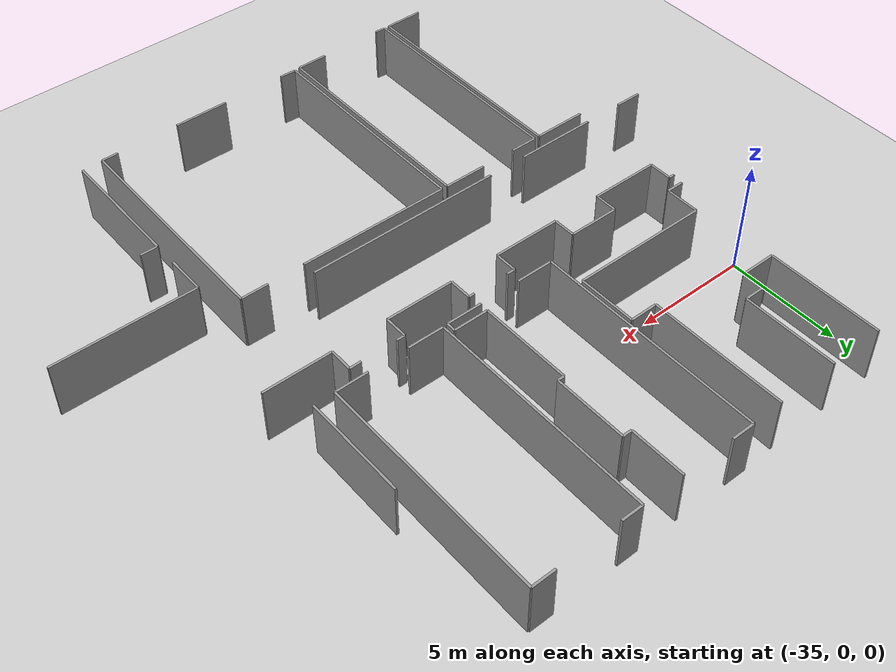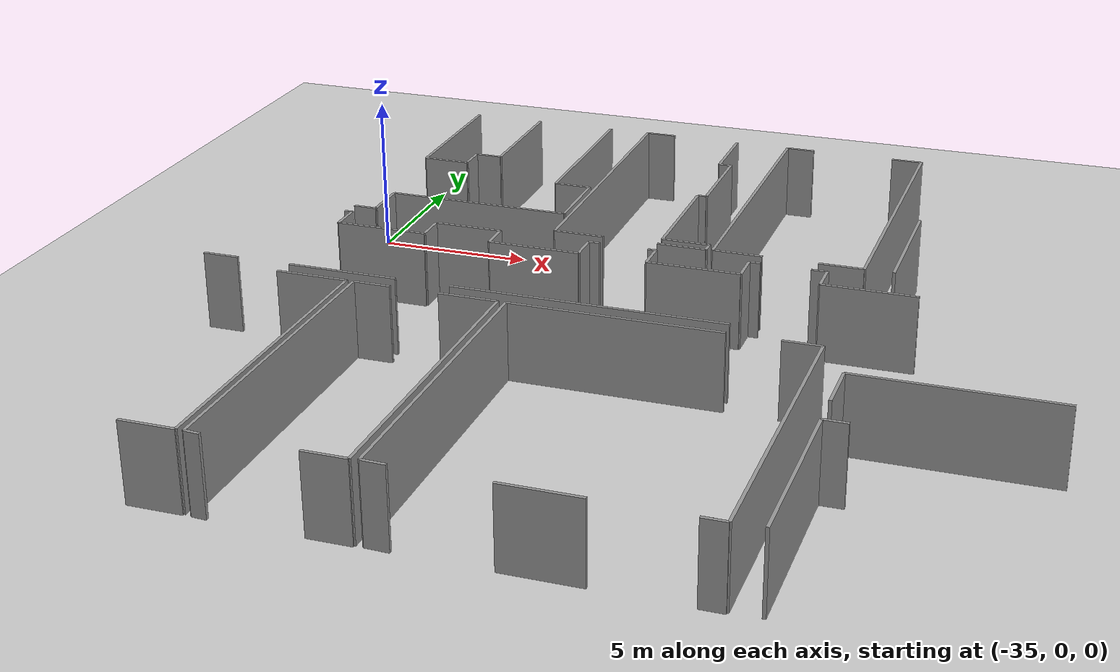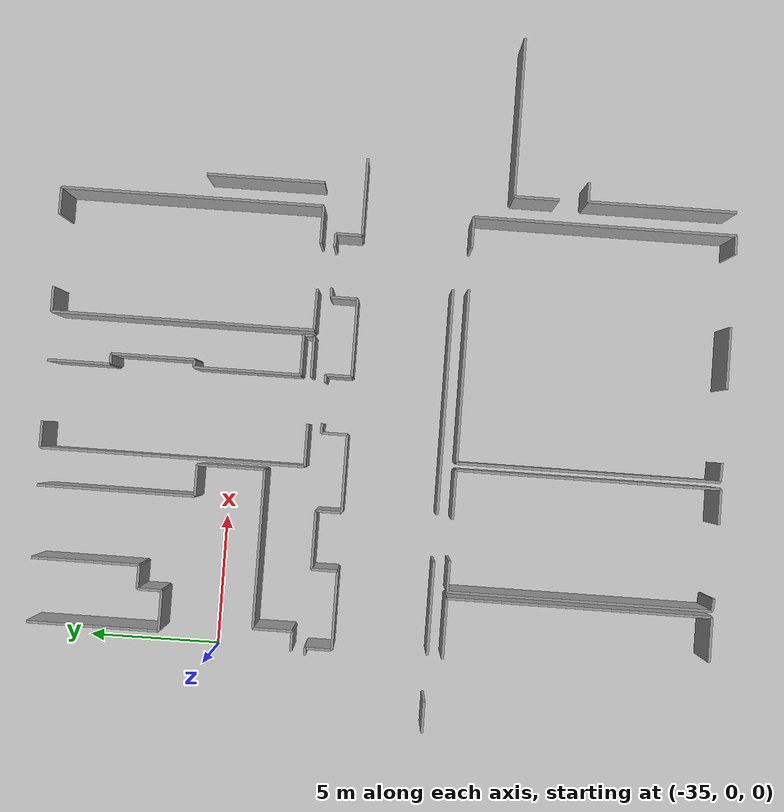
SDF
<sdf version="1.6">
 <world name="default">
  <model name="ground_plane">
   <static>1</static>
   <link name="link">
    <collision name="collision">
     <geometry><plane><normal>0 0 1</normal><size>100 100</size></plane></geometry>
     <surface><friction><ode><mu>100</mu><mu2>50</mu2></ode></friction></surface>
    </collision>
    <visual name="visual">
     <cast_shadows>0</cast_shadows>
     <geometry><plane><normal>0 0 1</normal><size>100 100</size></plane></geometry>
     <material>
      <script><uri>file://media/materials/scripts/gazebo.material</uri><name>Gazebo/Grey</name></script>
     </material>
    </visual>
   </link>
  </model>
  <model name="50055641">
   <static>1</static>
   <link name="Wall_41">
    <collision name="Wall_41_Collision">
     <geometry><box><size>0.258731226752 0.1 2.5</size></box></geometry>
     <pose>0.129365613376 0 1.25 0 0 0</pose>
    </collision>
    <visual name="Wall_41_Visual">
     <pose>0.129365613376 0 1.25 0 0 0</pose>
     <geometry><box><size>0.258731226752 0.1 2.5</size></box></geometry>
     <material>
      <script><uri>file://media/materials/scripts/gazebo.material</uri><name>Gazebo/Grey</name></script>
      <ambient>1 1 1 1</ambient>
     </material>
    </visual>
    <pose>34.4054132971 -22.2502507332 0 0 0 0.0</pose>
   </link>
   <link name="Wall_42">
    <collision name="Wall_42_Collision">
     <geometry><box><size>1.00483692823 0.1 2.5</size></box></geometry>
     <pose>0.502418464117 0 1.25 0 0 0</pose>
    </collision>
    <visual name="Wall_42_Visual">
     <pose>0.502418464117 0 1.25 0 0 0</pose>
     <geometry><box><size>1.00483692823 0.1 2.5</size></box></geometry>
     <material>
      <script><uri>file://media/materials/scripts/gazebo.material</uri><name>Gazebo/Grey</name></script>
      <ambient>1 1 1 1</ambient>
     </material>
    </visual>
    <pose>34.6641445239 -22.2502507332 0 0 0 -1.57079632679</pose>
   </link>
   <link name="Wall_43">
    <collision name="Wall_43_Collision">
     <geometry><box><size>2.96664931636 0.1 2.5</size></box></geometry>
     <pose>1.48332465818 0 1.25 0 0 0</pose>
    </collision>
    <visual name="Wall_43_Visual">
     <pose>1.48332465818 0 1.25 0 0 0</pose>
     <geometry><box><size>2.96664931636 0.1 2.5</size></box></geometry>
     <material>
      <script><uri>file://media/materials/scripts/gazebo.material</uri><name>Gazebo/Grey</name></script>
      <ambient>1 1 1 1</ambient>
     </material>
    </visual>
    <pose>34.6641445239 -23.2550876614 0 0 0 0.0</pose>
   </link>
   <link name="Wall_44">
    <collision name="Wall_44_Collision">
     <geometry><box><size>0.978303647374 0.1 2.5</size></box></geometry>
     <pose>0.489151823687 0 1.25 0 0 0</pose>
    </collision>
    <visual name="Wall_44_Visual">
     <pose>0.489151823687 0 1.25 0 0 0</pose>
     <geometry><box><size>0.978303647374 0.1 2.5</size></box></geometry>
     <material>
      <script><uri>file://media/materials/scripts/gazebo.material</uri><name>Gazebo/Grey</name></script>
      <ambient>1 1 1 1</ambient>
     </material>
    </visual>
    <pose>37.6307938402 -23.2550876614 0 0 0 1.57079632679</pose>
   </link>
   <link name="Wall_45">
    <collision name="Wall_45_Collision">
     <geometry><box><size>2.2027701253 0.1 2.5</size></box></geometry>
     <pose>1.10138506265 0 1.25 0 0 0</pose>
    </collision>
    <visual name="Wall_45_Visual">
     <pose>1.10138506265 0 1.25 0 0 0</pose>
     <geometry><box><size>2.2027701253 0.1 2.5</size></box></geometry>
     <material>
      <script><uri>file://media/materials/scripts/gazebo.material</uri><name>Gazebo/Grey</name></script>
      <ambient>1 1 1 1</ambient>
     </material>
    </visual>
    <pose>37.6307938402 -22.276784014 0 0 0 0.0</pose>
   </link>
   <link name="Wall_46">
    <collision name="Wall_46_Collision">
     <geometry><box><size>0.971955972527 0.1 2.5</size></box></geometry>
     <pose>0.485977986264 0 1.25 0 0 0</pose>
    </collision>
    <visual name="Wall_46_Visual">
     <pose>0.485977986264 0 1.25 0 0 0</pose>
     <geometry><box><size>0.971955972527 0.1 2.5</size></box></geometry>
     <material>
      <script><uri>file://media/materials/scripts/gazebo.material</uri><name>Gazebo/Grey</name></script>
      <ambient>1 1 1 1</ambient>
     </material>
    </visual>
    <pose>39.8335639655 -22.276784014 0 0 0 -1.57079632679</pose>
   </link>
   <link name="Wall_47">
    <collision name="Wall_47_Collision">
     <geometry><box><size>2.94760629182 0.1 2.5</size></box></geometry>
     <pose>1.47380314591 0 1.25 0 0 0</pose>
    </collision>
    <visual name="Wall_47_Visual">
     <pose>1.47380314591 0 1.25 0 0 0</pose>
     <geometry><box><size>2.94760629182 0.1 2.5</size></box></geometry>
     <material>
      <script><uri>file://media/materials/scripts/gazebo.material</uri><name>Gazebo/Grey</name></script>
      <ambient>1 1 1 1</ambient>
     </material>
    </visual>
    <pose>39.8335639655 -23.2487399865 0 0 0 0.0</pose>
   </link>
   <link name="Wall_48">
    <collision name="Wall_48_Collision">
     <geometry><box><size>0.984651322221 0.1 2.5</size></box></geometry>
     <pose>0.49232566111 0 1.25 0 0 0</pose>
    </collision>
    <visual name="Wall_48_Visual">
     <pose>0.49232566111 0 1.25 0 0 0</pose>
     <geometry><box><size>0.984651322221 0.1 2.5</size></box></geometry>
     <material>
      <script><uri>file://media/materials/scripts/gazebo.material</uri><name>Gazebo/Grey</name></script>
      <ambient>1 1 1 1</ambient>
     </material>
    </visual>
    <pose>42.7811702573 -23.2487399865 0 0 0 1.57079632679</pose>
   </link>
   <link name="Wall_49">
    <collision name="Wall_49_Collision">
     <geometry><box><size>0.359786210311 0.1 2.5</size></box></geometry>
     <pose>0.179893105156 0 1.25 0 0 0</pose>
    </collision>
    <visual name="Wall_49_Visual">
     <pose>0.179893105156 0 1.25 0 0 0</pose>
     <geometry><box><size>0.359786210311 0.1 2.5</size></box></geometry>
     <material>
      <script><uri>file://media/materials/scripts/gazebo.material</uri><name>Gazebo/Grey</name></script>
      <ambient>1 1 1 1</ambient>
     </material>
    </visual>
    <pose>42.7811702573 -22.2640886643 0 0 0 0.0</pose>
   </link>
   <link name="Wall_50">
    <collision name="Wall_50_Collision">
     <geometry><box><size>0.259239040739 0.1 2.5</size></box></geometry>
     <pose>0.12961952037 0 1.25 0 0 0</pose>
    </collision>
    <visual name="Wall_50_Visual">
     <pose>0.12961952037 0 1.25 0 0 0</pose>
     <geometry><box><size>0.259239040739 0.1 2.5</size></box></geometry>
     <material>
      <script><uri>file://media/materials/scripts/gazebo.material</uri><name>Gazebo/Grey</name></script>
      <ambient>1 1 1 1</ambient>
     </material>
    </visual>
    <pose>44.721654458 -22.2640886643 0 0 0 0.0</pose>
   </link>
   <link name="Wall_51">
    <collision name="Wall_51_Collision">
     <geometry><box><size>0.995569322957 0.1 2.5</size></box></geometry>
     <pose>0.497784661479 0 1.25 0 0 0</pose>
    </collision>
    <visual name="Wall_51_Visual">
     <pose>0.497784661479 0 1.25 0 0 0</pose>
     <geometry><box><size>0.995569322957 0.1 2.5</size></box></geometry>
     <material>
      <script><uri>file://media/materials/scripts/gazebo.material</uri><name>Gazebo/Grey</name></script>
      <ambient>1 1 1 1</ambient>
     </material>
    </visual>
    <pose>44.9808934987 -22.2640886643 0 0 0 -1.57079632679</pose>
   </link>
   <link name="Wall_52">
    <collision name="Wall_52_Collision">
     <geometry><box><size>2.96614150237 0.1 2.5</size></box></geometry>
     <pose>1.48307075118 0 1.25 0 0 0</pose>
    </collision>
    <visual name="Wall_52_Visual">
     <pose>1.48307075118 0 1.25 0 0 0</pose>
     <geometry><box><size>2.96614150237 0.1 2.5</size></box></geometry>
     <material>
      <script><uri>file://media/materials/scripts/gazebo.material</uri><name>Gazebo/Grey</name></script>
      <ambient>1 1 1 1</ambient>
     </material>
    </visual>
    <pose>44.9808934987 -23.2596579873 0 0 0 0.0</pose>
   </link>
   <link name="Wall_53">
    <collision name="Wall_53_Collision">
     <geometry><box><size>1.00801076566 0.1 2.5</size></box></geometry>
     <pose>0.504005382828 0 1.25 0 0 0</pose>
    </collision>
    <visual name="Wall_53_Visual">
     <pose>0.504005382828 0 1.25 0 0 0</pose>
     <geometry><box><size>1.00801076566 0.1 2.5</size></box></geometry>
     <material>
      <script><uri>file://media/materials/scripts/gazebo.material</uri><name>Gazebo/Grey</name></script>
      <ambient>1 1 1 1</ambient>
     </material>
    </visual>
    <pose>47.9470350011 -23.2596579873 0 0 0 1.57079632679</pose>
   </link>
   <link name="Wall_54">
    <collision name="Wall_54_Collision">
     <geometry><box><size>0.355215884422 0.1 2.5</size></box></geometry>
     <pose>0.177607942211 0 1.25 0 0 0</pose>
    </collision>
    <visual name="Wall_54_Visual">
     <pose>0.177607942211 0 1.25 0 0 0</pose>
     <geometry><box><size>0.355215884422 0.1 2.5</size></box></geometry>
     <material>
      <script><uri>file://media/materials/scripts/gazebo.material</uri><name>Gazebo/Grey</name></script>
      <ambient>1 1 1 1</ambient>
     </material>
    </visual>
    <pose>47.9470350011 -22.2516472216 0 0 0 0.0</pose>
   </link>
   <link name="Wall_55">
    <collision name="Wall_55_Collision">
     <geometry><box><size>0.495118638043 0.1 2.5</size></box></geometry>
     <pose>0.247559319021 0 1.25 0 0 0</pose>
    </collision>
    <visual name="Wall_55_Visual">
     <pose>0.247559319021 0 1.25 0 0 0</pose>
     <geometry><box><size>0.495118638043 0.1 2.5</size></box></geometry>
     <material>
      <script><uri>file://media/materials/scripts/gazebo.material</uri><name>Gazebo/Grey</name></script>
      <ambient>1 1 1 1</ambient>
     </material>
    </visual>
    <pose>49.8800289454 -22.2516472216 0 0 0 0.0</pose>
   </link>
   <link name="Wall_56">
    <collision name="Wall_56_Collision">
     <geometry><box><size>1.01143851007 0.1 2.5</size></box></geometry>
     <pose>0.505719255037 0 1.25 0 0 0</pose>
    </collision>
    <visual name="Wall_56_Visual">
     <pose>0.505719255037 0 1.25 0 0 0</pose>
     <geometry><box><size>1.01143851007 0.1 2.5</size></box></geometry>
     <material>
      <script><uri>file://media/materials/scripts/gazebo.material</uri><name>Gazebo/Grey</name></script>
      <ambient>1 1 1 1</ambient>
     </material>
    </visual>
    <pose>50.3751475834 -22.2516472216 0 0 0 -1.57079632679</pose>
   </link>
   <link name="Wall_57">
    <collision name="Wall_57_Collision">
     <geometry><box><size>2.95763561807 0.1 2.5</size></box></geometry>
     <pose>1.47881780904 0 1.25 0 0 0</pose>
    </collision>
    <visual name="Wall_57_Visual">
     <pose>1.47881780904 0 1.25 0 0 0</pose>
     <geometry><box><size>2.95763561807 0.1 2.5</size></box></geometry>
     <material>
      <script><uri>file://media/materials/scripts/gazebo.material</uri><name>Gazebo/Grey</name></script>
      <ambient>1 1 1 1</ambient>
     </material>
    </visual>
    <pose>50.3751475834 -23.2630857317 0 0 0 0.0</pose>
   </link>
   <link name="Wall_59">
    <collision name="Wall_59_Collision">
     <geometry><box><size>8.56440985667 0.1 2.5</size></box></geometry>
     <pose>4.28220492833 0 1.25 0 0 0</pose>
    </collision>
    <visual name="Wall_59_Visual">
     <pose>4.28220492833 0 1.25 0 0 0</pose>
     <geometry><box><size>8.56440985667 0.1 2.5</size></box></geometry>
     <material>
      <script><uri>file://media/materials/scripts/gazebo.material</uri><name>Gazebo/Grey</name></script>
      <ambient>1 1 1 1</ambient>
     </material>
    </visual>
    <pose>48.5664411126 -26.8581548579 0 0 0 3.14159265359</pose>
   </link>
   <link name="Wall_60">
    <collision name="Wall_60_Collision">
     <geometry><box><size>3.51851616753 0.1 2.5</size></box></geometry>
     <pose>1.75925808376 0 1.25 0 0 0</pose>
    </collision>
    <visual name="Wall_60_Visual">
     <pose>1.75925808376 0 1.25 0 0 0</pose>
     <geometry><box><size>3.51851616753 0.1 2.5</size></box></geometry>
     <material>
      <script><uri>file://media/materials/scripts/gazebo.material</uri><name>Gazebo/Grey</name></script>
      <ambient>1 1 1 1</ambient>
     </material>
    </visual>
    <pose>38.2434714164 -26.8581548579 0 0 0 3.14159265359</pose>
   </link>
   <link name="Wall_61">
    <collision name="Wall_61_Collision">
     <geometry><box><size>1.1552768221 0.1 2.5</size></box></geometry>
     <pose>0.57763841105 0 1.25 0 0 0</pose>
    </collision>
    <visual name="Wall_61_Visual">
     <pose>0.57763841105 0 1.25 0 0 0</pose>
     <geometry><box><size>1.1552768221 0.1 2.5</size></box></geometry>
     <material>
      <script><uri>file://media/materials/scripts/gazebo.material</uri><name>Gazebo/Grey</name></script>
      <ambient>1 1 1 1</ambient>
     </material>
    </visual>
    <pose>32.9825185035 -26.8581548579 0 0 0 3.14159265359</pose>
   </link>
   <link name="Wall_99">
    <collision name="Wall_99_Collision">
     <geometry><box><size>5.00006347675 0.1 2.5</size></box></geometry>
     <pose>2.50003173837 0 1.25 0 0 0</pose>
    </collision>
    <visual name="Wall_99_Visual">
     <pose>2.50003173837 0 1.25 0 0 0</pose>
     <geometry><box><size>5.00006347675 0.1 2.5</size></box></geometry>
     <material>
      <script><uri>file://media/materials/scripts/gazebo.material</uri><name>Gazebo/Grey</name></script>
      <ambient>1 1 1 1</ambient>
     </material>
    </visual>
    <pose>34.9018014701 -11.6992725565 0 0 0 -1.57079632679</pose>
   </link>
   <link name="Wall_100">
    <collision name="Wall_100_Collision">
     <geometry><box><size>1.51925249781 0.1 2.5</size></box></geometry>
     <pose>0.759626248905 0 1.25 0 0 0</pose>
    </collision>
    <visual name="Wall_100_Visual">
     <pose>0.759626248905 0 1.25 0 0 0</pose>
     <geometry><box><size>1.51925249781 0.1 2.5</size></box></geometry>
     <material>
      <script><uri>file://media/materials/scripts/gazebo.material</uri><name>Gazebo/Grey</name></script>
      <ambient>1 1 1 1</ambient>
     </material>
    </visual>
    <pose>34.9018014701 -16.6993360332 0 0 0 0.0</pose>
   </link>
   <link name="Wall_101">
    <collision name="Wall_101_Collision">
     <geometry><box><size>0.926506620625 0.1 2.5</size></box></geometry>
     <pose>0.463253310312 0 1.25 0 0 0</pose>
    </collision>
    <visual name="Wall_101_Visual">
     <pose>0.463253310312 0 1.25 0 0 0</pose>
     <geometry><box><size>0.926506620625 0.1 2.5</size></box></geometry>
     <material>
      <script><uri>file://media/materials/scripts/gazebo.material</uri><name>Gazebo/Grey</name></script>
      <ambient>1 1 1 1</ambient>
     </material>
    </visual>
    <pose>36.4210539679 -16.6993360332 0 0 0 1.57079632679</pose>
   </link>
   <link name="Wall_102">
    <collision name="Wall_102_Collision">
     <geometry><box><size>0.893117850931 0.1 2.5</size></box></geometry>
     <pose>0.446558925466 0 1.25 0 0 0</pose>
    </collision>
    <visual name="Wall_102_Visual">
     <pose>0.446558925466 0 1.25 0 0 0</pose>
     <geometry><box><size>0.893117850931 0.1 2.5</size></box></geometry>
     <material>
      <script><uri>file://media/materials/scripts/gazebo.material</uri><name>Gazebo/Grey</name></script>
      <ambient>1 1 1 1</ambient>
     </material>
    </visual>
    <pose>36.4210539679 -15.7728294126 0 0 0 0.0</pose>
   </link>
   <link name="Wall_103">
    <collision name="Wall_103_Collision">
     <geometry><box><size>4.07355685612 0.1 2.5</size></box></geometry>
     <pose>2.03677842806 0 1.25 0 0 0</pose>
    </collision>
    <visual name="Wall_103_Visual">
     <pose>2.03677842806 0 1.25 0 0 0</pose>
     <geometry><box><size>4.07355685612 0.1 2.5</size></box></geometry>
     <material>
      <script><uri>file://media/materials/scripts/gazebo.material</uri><name>Gazebo/Grey</name></script>
      <ambient>1 1 1 1</ambient>
     </material>
    </visual>
    <pose>37.3141718189 -15.7728294126 0 0 0 1.57079632679</pose>
   </link>
   <link name="Wall_104">
    <collision name="Wall_104_Collision">
     <geometry><box><size>5.97062296081 0.1 2.5</size></box></geometry>
     <pose>2.9853114804 0 1.25 0 0 0</pose>
    </collision>
    <visual name="Wall_104_Visual">
     <pose>2.9853114804 0 1.25 0 0 0</pose>
     <geometry><box><size>5.97062296081 0.1 2.5</size></box></geometry>
     <material>
      <script><uri>file://media/materials/scripts/gazebo.material</uri><name>Gazebo/Grey</name></script>
      <ambient>1 1 1 1</ambient>
     </material>
    </visual>
    <pose>40.0521778872 -11.6992725565 0 0 0 -1.57079632679</pose>
   </link>
   <link name="Wall_105">
    <collision name="Wall_105_Collision">
     <geometry><box><size>1.1966636621 0.1 2.5</size></box></geometry>
     <pose>0.59833183105 0 1.25 0 0 0</pose>
    </collision>
    <visual name="Wall_105_Visual">
     <pose>0.59833183105 0 1.25 0 0 0</pose>
     <geometry><box><size>1.1966636621 0.1 2.5</size></box></geometry>
     <material>
      <script><uri>file://media/materials/scripts/gazebo.material</uri><name>Gazebo/Grey</name></script>
      <ambient>1 1 1 1</ambient>
     </material>
    </visual>
    <pose>40.0521778872 -17.6698955173 0 0 0 0.0</pose>
   </link>
   <link name="Wall_106">
    <collision name="Wall_106_Collision">
     <geometry><box><size>2.56179461463 0.1 2.5</size></box></geometry>
     <pose>1.28089730732 0 1.25 0 0 0</pose>
    </collision>
    <visual name="Wall_106_Visual">
     <pose>1.28089730732 0 1.25 0 0 0</pose>
     <geometry><box><size>2.56179461463 0.1 2.5</size></box></geometry>
     <material>
      <script><uri>file://media/materials/scripts/gazebo.material</uri><name>Gazebo/Grey</name></script>
      <ambient>1 1 1 1</ambient>
     </material>
    </visual>
    <pose>41.2488415493 -17.6698955173 0 0 0 -1.57079632679</pose>
   </link>
   <link name="Wall_107">
    <collision name="Wall_107_Collision">
     <geometry><box><size>5.99347459026 0.1 2.5</size></box></geometry>
     <pose>2.99673729513 0 1.25 0 0 0</pose>
    </collision>
    <visual name="Wall_107_Visual">
     <pose>2.99673729513 0 1.25 0 0 0</pose>
     <geometry><box><size>5.99347459026 0.1 2.5</size></box></geometry>
     <material>
      <script><uri>file://media/materials/scripts/gazebo.material</uri><name>Gazebo/Grey</name></script>
      <ambient>1 1 1 1</ambient>
     </material>
    </visual>
    <pose>41.2488415493 -20.2316901319 0 0 0 3.14159265359</pose>
   </link>
   <link name="Wall_108">
    <collision name="Wall_108_Collision">
     <geometry><box><size>1.48878365855 0.1 2.5</size></box></geometry>
     <pose>0.744391829273 0 1.25 0 0 0</pose>
    </collision>
    <visual name="Wall_108_Visual">
     <pose>0.744391829273 0 1.25 0 0 0</pose>
     <geometry><box><size>1.48878365855 0.1 2.5</size></box></geometry>
     <material>
      <script><uri>file://media/materials/scripts/gazebo.material</uri><name>Gazebo/Grey</name></script>
      <ambient>1 1 1 1</ambient>
     </material>
    </visual>
    <pose>35.2553669591 -20.2316901319 0 0 0 -1.57079632679</pose>
   </link>
   <link name="Wall_109">
    <collision name="Wall_109_Collision">
     <geometry><box><size>0.751945562341 0.1 2.5</size></box></geometry>
     <pose>0.37597278117 0 1.25 0 0 0</pose>
    </collision>
    <visual name="Wall_109_Visual">
     <pose>0.37597278117 0 1.25 0 0 0</pose>
     <geometry><box><size>0.751945562341 0.1 2.5</size></box></geometry>
     <material>
      <script><uri>file://media/materials/scripts/gazebo.material</uri><name>Gazebo/Grey</name></script>
      <ambient>1 1 1 1</ambient>
     </material>
    </visual>
    <pose>35.2553669591 -21.7204737905 0 0 0 3.14159265359</pose>
   </link>
   <link name="Wall_111">
    <collision name="Wall_111_Collision">
     <geometry><box><size>1.56470184971 0.1 2.5</size></box></geometry>
     <pose>0.782350924856 0 1.25 0 0 0</pose>
    </collision>
    <visual name="Wall_111_Visual">
     <pose>0.782350924856 0 1.25 0 0 0</pose>
     <geometry><box><size>1.56470184971 0.1 2.5</size></box></geometry>
     <material>
      <script><uri>file://media/materials/scripts/gazebo.material</uri><name>Gazebo/Grey</name></script>
      <ambient>1 1 1 1</ambient>
     </material>
    </visual>
    <pose>46.4303215732 -21.7236476279 0 0 0 3.14159265359</pose>
   </link>
   <link name="Wall_112">
    <collision name="Wall_112_Collision">
     <geometry><box><size>1.61269027155 0.1 2.5</size></box></geometry>
     <pose>0.806345135777 0 1.25 0 0 0</pose>
    </collision>
    <visual name="Wall_112_Visual">
     <pose>0.806345135777 0 1.25 0 0 0</pose>
     <geometry><box><size>1.61269027155 0.1 2.5</size></box></geometry>
     <material>
      <script><uri>file://media/materials/scripts/gazebo.material</uri><name>Gazebo/Grey</name></script>
      <ambient>1 1 1 1</ambient>
     </material>
    </visual>
    <pose>43.0801457426 -21.7236476279 0 0 0 3.14159265359</pose>
   </link>
   <link name="Wall_113">
    <collision name="Wall_113_Collision">
     <geometry><box><size>10.0327540022 0.1 2.5</size></box></geometry>
     <pose>5.0163770011 0 1.25 0 0 0</pose>
    </collision>
    <visual name="Wall_113_Visual">
     <pose>5.0163770011 0 1.25 0 0 0</pose>
     <geometry><box><size>10.0327540022 0.1 2.5</size></box></geometry>
     <material>
      <script><uri>file://media/materials/scripts/gazebo.material</uri><name>Gazebo/Grey</name></script>
      <ambient>1 1 1 1</ambient>
     </material>
    </visual>
    <pose>41.4674554711 -21.7236476279 0 0 0 1.57079632679</pose>
   </link>
   <link name="Wall_114">
    <collision name="Wall_114_Collision">
     <geometry><box><size>1.00547169572 0.1 2.5</size></box></geometry>
     <pose>0.502735847859 0 1.25 0 0 0</pose>
    </collision>
    <visual name="Wall_114_Visual">
     <pose>0.502735847859 0 1.25 0 0 0</pose>
     <geometry><box><size>1.00547169572 0.1 2.5</size></box></geometry>
     <material>
      <script><uri>file://media/materials/scripts/gazebo.material</uri><name>Gazebo/Grey</name></script>
      <ambient>1 1 1 1</ambient>
     </material>
    </visual>
    <pose>41.4674554711 -11.6908936257 0 0 0 0.0</pose>
   </link>
   <link name="Wall_115">
    <collision name="Wall_115_Collision">
     <geometry><box><size>2.40119844101 0.1 2.5</size></box></geometry>
     <pose>1.20059922051 0 1.25 0 0 0</pose>
    </collision>
    <visual name="Wall_115_Visual">
     <pose>1.20059922051 0 1.25 0 0 0</pose>
     <geometry><box><size>2.40119844101 0.1 2.5</size></box></geometry>
     <material>
      <script><uri>file://media/materials/scripts/gazebo.material</uri><name>Gazebo/Grey</name></script>
      <ambient>1 1 1 1</ambient>
     </material>
    </visual>
    <pose>44.7984613236 -11.6908936257 0 0 0 -1.57079632679</pose>
   </link>
   <link name="Wall_116">
    <collision name="Wall_116_Collision">
     <geometry><box><size>0.403204306263 0.1 2.5</size></box></geometry>
     <pose>0.201602153131 0 1.25 0 0 0</pose>
    </collision>
    <visual name="Wall_116_Visual">
     <pose>0.201602153131 0 1.25 0 0 0</pose>
     <geometry><box><size>0.403204306263 0.1 2.5</size></box></geometry>
     <material>
      <script><uri>file://media/materials/scripts/gazebo.material</uri><name>Gazebo/Grey</name></script>
      <ambient>1 1 1 1</ambient>
     </material>
    </visual>
    <pose>44.7984613236 -14.0920920667 0 0 0 0.0</pose>
   </link>
   <link name="Wall_117">
    <collision name="Wall_117_Collision">
     <geometry><box><size>3.167870609 0.1 2.5</size></box></geometry>
     <pose>1.5839353045 0 1.25 0 0 0</pose>
    </collision>
    <visual name="Wall_117_Visual">
     <pose>1.5839353045 0 1.25 0 0 0</pose>
     <geometry><box><size>3.167870609 0.1 2.5</size></box></geometry>
     <material>
      <script><uri>file://media/materials/scripts/gazebo.material</uri><name>Gazebo/Grey</name></script>
      <ambient>1 1 1 1</ambient>
     </material>
    </visual>
    <pose>45.2016656299 -14.0920920667 0 0 0 -1.57079632679</pose>
   </link>
   <link name="Wall_118">
    <collision name="Wall_118_Collision">
     <geometry><box><size>0.288057484543 0.1 2.5</size></box></geometry>
     <pose>0.144028742272 0 1.25 0 0 0</pose>
    </collision>
    <visual name="Wall_118_Visual">
     <pose>0.144028742272 0 1.25 0 0 0</pose>
     <geometry><box><size>0.288057484543 0.1 2.5</size></box></geometry>
     <material>
      <script><uri>file://media/materials/scripts/gazebo.material</uri><name>Gazebo/Grey</name></script>
      <ambient>1 1 1 1</ambient>
     </material>
    </visual>
    <pose>45.2016656299 -17.2599626757 0 0 0 3.14159265359</pose>
   </link>
   <link name="Wall_119">
    <collision name="Wall_119_Collision">
     <geometry><box><size>4.06048064594 0.1 2.5</size></box></geometry>
     <pose>2.03024032297 0 1.25 0 0 0</pose>
    </collision>
    <visual name="Wall_119_Visual">
     <pose>2.03024032297 0 1.25 0 0 0</pose>
     <geometry><box><size>4.06048064594 0.1 2.5</size></box></geometry>
     <material>
      <script><uri>file://media/materials/scripts/gazebo.material</uri><name>Gazebo/Grey</name></script>
      <ambient>1 1 1 1</ambient>
     </material>
    </visual>
    <pose>44.9136081453 -17.2599626757 0 0 0 -1.57079632679</pose>
   </link>
   <link name="Wall_120">
    <collision name="Wall_120_Collision">
     <geometry><box><size>1.52636189364 0.1 2.5</size></box></geometry>
     <pose>0.763180946819 0 1.25 0 0 0</pose>
    </collision>
    <visual name="Wall_120_Visual">
     <pose>0.763180946819 0 1.25 0 0 0</pose>
     <geometry><box><size>1.52636189364 0.1 2.5</size></box></geometry>
     <material>
      <script><uri>file://media/materials/scripts/gazebo.material</uri><name>Gazebo/Grey</name></script>
      <ambient>1 1 1 1</ambient>
     </material>
    </visual>
    <pose>44.9136081453 -21.3204433216 0 0 0 0.0</pose>
   </link>
   <link name="Wall_121">
    <collision name="Wall_121_Collision">
     <geometry><box><size>0.403319731082 0.1 2.5</size></box></geometry>
     <pose>0.201659865541 0 1.25 0 0 0</pose>
    </collision>
    <visual name="Wall_121_Visual">
     <pose>0.201659865541 0 1.25 0 0 0</pose>
     <geometry><box><size>0.403319731082 0.1 2.5</size></box></geometry>
     <material>
      <script><uri>file://media/materials/scripts/gazebo.material</uri><name>Gazebo/Grey</name></script>
      <ambient>1 1 1 1</ambient>
     </material>
    </visual>
    <pose>46.439970039 -21.3204433216 0 0 0 -1.5947212319</pose>
   </link>
   <link name="Wall_122">
    <collision name="Wall_122_Collision">
     <geometry><box><size>9.99695311607 0.1 2.5</size></box></geometry>
     <pose>4.99847655804 0 1.25 0 0 0</pose>
    </collision>
    <visual name="Wall_122_Visual">
     <pose>4.99847655804 0 1.25 0 0 0</pose>
     <geometry><box><size>9.99695311607 0.1 2.5</size></box></geometry>
     <material>
      <script><uri>file://media/materials/scripts/gazebo.material</uri><name>Gazebo/Grey</name></script>
      <ambient>1 1 1 1</ambient>
     </material>
    </visual>
    <pose>46.6465233785 -21.6995264635 0 0 0 1.57079632679</pose>
   </link>
   <link name="Wall_123">
    <collision name="Wall_123_Collision">
     <geometry><box><size>0.94618441265 0.1 2.5</size></box></geometry>
     <pose>0.473092206325 0 1.25 0 0 0</pose>
    </collision>
    <visual name="Wall_123_Visual">
     <pose>0.473092206325 0 1.25 0 0 0</pose>
     <geometry><box><size>0.94618441265 0.1 2.5</size></box></geometry>
     <material>
      <script><uri>file://media/materials/scripts/gazebo.material</uri><name>Gazebo/Grey</name></script>
      <ambient>1 1 1 1</ambient>
     </material>
    </visual>
    <pose>46.6465233785 -11.7025733474 0 0 0 0.0</pose>
   </link>
   <link name="Wall_124">
    <collision name="Wall_124_Collision">
     <geometry><box><size>1.01613578946 0.1 2.5</size></box></geometry>
     <pose>0.50806789473 0 1.25 0 0 0</pose>
    </collision>
    <visual name="Wall_124_Visual">
     <pose>0.50806789473 0 1.25 0 0 0</pose>
     <geometry><box><size>1.01613578946 0.1 2.5</size></box></geometry>
     <material>
      <script><uri>file://media/materials/scripts/gazebo.material</uri><name>Gazebo/Grey</name></script>
      <ambient>1 1 1 1</ambient>
     </material>
    </visual>
    <pose>50.3800987698 -11.7025733474 0 0 0 0.0</pose>
   </link>
   <link name="Wall_125">
    <collision name="Wall_125_Collision">
     <geometry><box><size>10.0069824423 0.1 2.5</size></box></geometry>
     <pose>5.00349122117 0 1.25 0 0 0</pose>
    </collision>
    <visual name="Wall_125_Visual">
     <pose>5.00349122117 0 1.25 0 0 0</pose>
     <geometry><box><size>10.0069824423 0.1 2.5</size></box></geometry>
     <material>
      <script><uri>file://media/materials/scripts/gazebo.material</uri><name>Gazebo/Grey</name></script>
      <ambient>1 1 1 1</ambient>
     </material>
    </visual>
    <pose>51.3962345593 -11.7025733474 0 0 0 -1.57079632679</pose>
   </link>
   <link name="Wall_126">
    <collision name="Wall_126_Collision">
     <geometry><box><size>1.42060963069 0.1 2.5</size></box></geometry>
     <pose>0.710304815346 0 1.25 0 0 0</pose>
    </collision>
    <visual name="Wall_126_Visual">
     <pose>0.710304815346 0 1.25 0 0 0</pose>
     <geometry><box><size>1.42060963069 0.1 2.5</size></box></geometry>
     <material>
      <script><uri>file://media/materials/scripts/gazebo.material</uri><name>Gazebo/Grey</name></script>
      <ambient>1 1 1 1</ambient>
     </material>
    </visual>
    <pose>51.3962345593 -21.7095557897 0 0 0 3.14159265359</pose>
   </link>
   <link name="Wall_127">
    <collision name="Wall_127_Collision">
     <geometry><box><size>1.57831773958 0.1 2.5</size></box></geometry>
     <pose>0.789158869792 0 1.25 0 0 0</pose>
    </collision>
    <visual name="Wall_127_Visual">
     <pose>0.789158869792 0 1.25 0 0 0</pose>
     <geometry><box><size>1.57831773958 0.1 2.5</size></box></geometry>
     <material>
      <script><uri>file://media/materials/scripts/gazebo.material</uri><name>Gazebo/Grey</name></script>
      <ambient>1 1 1 1</ambient>
     </material>
    </visual>
    <pose>48.2248092524 -21.7095557897 0 0 0 3.13523817027</pose>
   </link>
   <link name="Wall_128">
    <collision name="Wall_128_Collision">
     <geometry><box><size>9.98590816184 0.1 2.5</size></box></geometry>
     <pose>4.99295408092 0 1.25 0 0 0</pose>
    </collision>
    <visual name="Wall_128_Visual">
     <pose>4.99295408092 0 1.25 0 0 0</pose>
     <geometry><box><size>9.98590816184 0.1 2.5</size></box></geometry>
     <material>
      <script><uri>file://media/materials/scripts/gazebo.material</uri><name>Gazebo/Grey</name></script>
      <ambient>1 1 1 1</ambient>
     </material>
    </visual>
    <pose>42.0084043215 -37.4404905483 0 0 0 1.57079632679</pose>
   </link>
   <link name="Wall_129">
    <collision name="Wall_129_Collision">
     <geometry><box><size>6.60107402658 0.1 2.5</size></box></geometry>
     <pose>3.30053701329 0 1.25 0 0 0</pose>
    </collision>
    <visual name="Wall_129_Visual">
     <pose>3.30053701329 0 1.25 0 0 0</pose>
     <geometry><box><size>6.60107402658 0.1 2.5</size></box></geometry>
     <material>
      <script><uri>file://media/materials/scripts/gazebo.material</uri><name>Gazebo/Grey</name></script>
      <ambient>1 1 1 1</ambient>
     </material>
    </visual>
    <pose>42.0084043215 -27.4545823865 0 0 0 0.0</pose>
   </link>
   <link name="Wall_130">
    <collision name="Wall_130_Collision">
     <geometry><box><size>1.18079447498 0.1 2.5</size></box></geometry>
     <pose>0.590397237492 0 1.25 0 0 0</pose>
    </collision>
    <visual name="Wall_130_Visual">
     <pose>0.590397237492 0 1.25 0 0 0</pose>
     <geometry><box><size>1.18079447498 0.1 2.5</size></box></geometry>
     <material>
      <script><uri>file://media/materials/scripts/gazebo.material</uri><name>Gazebo/Grey</name></script>
      <ambient>1 1 1 1</ambient>
     </material>
    </visual>
    <pose>50.2125201539 -27.4545823865 0 0 0 0.0</pose>
   </link>
   <link name="Wall_131">
    <collision name="Wall_131_Collision">
     <geometry><box><size>10.0123144892 0.1 2.5</size></box></geometry>
     <pose>5.0061572446 0 1.25 0 0 0</pose>
    </collision>
    <visual name="Wall_131_Visual">
     <pose>5.0061572446 0 1.25 0 0 0</pose>
     <geometry><box><size>10.0123144892 0.1 2.5</size></box></geometry>
     <material>
      <script><uri>file://media/materials/scripts/gazebo.material</uri><name>Gazebo/Grey</name></script>
      <ambient>1 1 1 1</ambient>
     </material>
    </visual>
    <pose>51.3933146289 -27.4545823865 0 0 0 -1.57079632679</pose>
   </link>
   <link name="Wall_132">
    <collision name="Wall_132_Collision">
     <geometry><box><size>0.716017722708 0.1 2.5</size></box></geometry>
     <pose>0.358008861354 0 1.25 0 0 0</pose>
    </collision>
    <visual name="Wall_132_Visual">
     <pose>0.358008861354 0 1.25 0 0 0</pose>
     <geometry><box><size>0.716017722708 0.1 2.5</size></box></geometry>
     <material>
      <script><uri>file://media/materials/scripts/gazebo.material</uri><name>Gazebo/Grey</name></script>
      <ambient>1 1 1 1</ambient>
     </material>
    </visual>
    <pose>51.3933146289 -37.4668968757 0 0 0 3.14159265359</pose>
   </link>
   <link name="Wall_133">
    <collision name="Wall_133_Collision">
     <geometry><box><size>2.36692099684 0.1 2.5</size></box></geometry>
     <pose>1.18346049842 0 1.25 0 0 0</pose>
    </collision>
    <visual name="Wall_133_Visual">
     <pose>1.18346049842 0 1.25 0 0 0</pose>
     <geometry><box><size>2.36692099684 0.1 2.5</size></box></geometry>
     <material>
      <script><uri>file://media/materials/scripts/gazebo.material</uri><name>Gazebo/Grey</name></script>
      <ambient>1 1 1 1</ambient>
     </material>
    </visual>
    <pose>47.9000622072 -37.4668968757 0 0 0 3.14159265359</pose>
   </link>
   <link name="Wall_134">
    <collision name="Wall_134_Collision">
     <geometry><box><size>0.729064487398 0.1 2.5</size></box></geometry>
     <pose>0.364532243699 0 1.25 0 0 0</pose>
    </collision>
    <visual name="Wall_134_Visual">
     <pose>0.364532243699 0 1.25 0 0 0</pose>
     <geometry><box><size>0.729064487398 0.1 2.5</size></box></geometry>
     <material>
      <script><uri>file://media/materials/scripts/gazebo.material</uri><name>Gazebo/Grey</name></script>
      <ambient>1 1 1 1</ambient>
     </material>
    </visual>
    <pose>42.7369904404 -37.4668968757 0 0 0 3.10536526253</pose>
   </link>
   <link name="Wall_135">
    <collision name="Wall_135_Collision">
     <geometry><box><size>10.001523442 0.1 2.5</size></box></geometry>
     <pose>5.00076172098 0 1.25 0 0 0</pose>
    </collision>
    <visual name="Wall_135_Visual">
     <pose>5.00076172098 0 1.25 0 0 0</pose>
     <geometry><box><size>10.001523442 0.1 2.5</size></box></geometry>
     <material>
      <script><uri>file://media/materials/scripts/gazebo.material</uri><name>Gazebo/Grey</name></script>
      <ambient>1 1 1 1</ambient>
     </material>
    </visual>
    <pose>37.1476088309 -37.4477268976 0 0 0 1.57079632679</pose>
   </link>
   <link name="Wall_136">
    <collision name="Wall_136_Collision">
     <geometry><box><size>1.17749368406 0.1 2.5</size></box></geometry>
     <pose>0.588746842032 0 1.25 0 0 0</pose>
    </collision>
    <visual name="Wall_136_Visual">
     <pose>0.588746842032 0 1.25 0 0 0</pose>
     <geometry><box><size>1.17749368406 0.1 2.5</size></box></geometry>
     <material>
      <script><uri>file://media/materials/scripts/gazebo.material</uri><name>Gazebo/Grey</name></script>
      <ambient>1 1 1 1</ambient>
     </material>
    </visual>
    <pose>37.1476088309 -27.4462034557 0 0 0 0.0</pose>
   </link>
   <link name="Wall_137">
    <collision name="Wall_137_Collision">
     <geometry><box><size>1.86139217205 0.1 2.5</size></box></geometry>
     <pose>0.930696086024 0 1.25 0 0 0</pose>
    </collision>
    <visual name="Wall_137_Visual">
     <pose>0.930696086024 0 1.25 0 0 0</pose>
     <geometry><box><size>1.86139217205 0.1 2.5</size></box></geometry>
     <material>
      <script><uri>file://media/materials/scripts/gazebo.material</uri><name>Gazebo/Grey</name></script>
      <ambient>1 1 1 1</ambient>
     </material>
    </visual>
    <pose>39.8852340388 -27.4462034557 0 0 0 0.0</pose>
   </link>
   <link name="Wall_138">
    <collision name="Wall_138_Collision">
     <geometry><box><size>10.0382130026 0.1 2.5</size></box></geometry>
     <pose>5.01910650129 0 1.25 0 0 0</pose>
    </collision>
    <visual name="Wall_138_Visual">
     <pose>5.01910650129 0 1.25 0 0 0</pose>
     <geometry><box><size>10.0382130026 0.1 2.5</size></box></geometry>
     <material>
      <script><uri>file://media/materials/scripts/gazebo.material</uri><name>Gazebo/Grey</name></script>
      <ambient>1 1 1 1</ambient>
     </material>
    </visual>
    <pose>41.7466262108 -27.4462034557 0 0 0 -1.57079632679</pose>
   </link>
   <link name="Wall_139">
    <collision name="Wall_139_Collision">
     <geometry><box><size>1.34392971854 0.1 2.5</size></box></geometry>
     <pose>0.671964859272 0 1.25 0 0 0</pose>
    </collision>
    <visual name="Wall_139_Visual">
     <pose>0.671964859272 0 1.25 0 0 0</pose>
     <geometry><box><size>1.34392971854 0.1 2.5</size></box></geometry>
     <material>
      <script><uri>file://media/materials/scripts/gazebo.material</uri><name>Gazebo/Grey</name></script>
      <ambient>1 1 1 1</ambient>
     </material>
    </visual>
    <pose>41.7466262108 -37.4844164583 0 0 0 3.14159265359</pose>
   </link>
   <link name="Wall_140">
    <collision name="Wall_140_Collision">
     <geometry><box><size>0.468500754009 0.1 2.5</size></box></geometry>
     <pose>0.234250377005 0 1.25 0 0 0</pose>
    </collision>
    <visual name="Wall_140_Visual">
     <pose>0.234250377005 0 1.25 0 0 0</pose>
     <geometry><box><size>0.468500754009 0.1 2.5</size></box></geometry>
     <material>
      <script><uri>file://media/materials/scripts/gazebo.material</uri><name>Gazebo/Grey</name></script>
      <ambient>1 1 1 1</ambient>
     </material>
    </visual>
    <pose>37.6146707461 -37.4844164583 0 0 0 3.06319968136</pose>
   </link>
   <link name="Wall_143">
    <collision name="Wall_143_Collision">
     <geometry><box><size>2.29125671267 0.1 2.5</size></box></geometry>
     <pose>1.14562835633 0 1.25 0 0 0</pose>
    </collision>
    <visual name="Wall_143_Visual">
     <pose>1.14562835633 0 1.25 0 0 0</pose>
     <geometry><box><size>2.29125671267 0.1 2.5</size></box></geometry>
     <material>
      <script><uri>file://media/materials/scripts/gazebo.material</uri><name>Gazebo/Grey</name></script>
      <ambient>1 1 1 1</ambient>
     </material>
    </visual>
    <pose>34.6199647069 -27.4392210133 0 0 0 0.0</pose>
   </link>
   <link name="Wall_144">
    <collision name="Wall_144_Collision">
     <geometry><box><size>10.0129492567 0.1 2.5</size></box></geometry>
     <pose>5.00647462834 0 1.25 0 0 0</pose>
    </collision>
    <visual name="Wall_144_Visual">
     <pose>5.00647462834 0 1.25 0 0 0</pose>
     <geometry><box><size>10.0129492567 0.1 2.5</size></box></geometry>
     <material>
      <script><uri>file://media/materials/scripts/gazebo.material</uri><name>Gazebo/Grey</name></script>
      <ambient>1 1 1 1</ambient>
     </material>
    </visual>
    <pose>36.9112214196 -27.4392210133 0 0 0 -1.57079632679</pose>
   </link>
   <link name="Wall_145">
    <collision name="Wall_145_Collision">
     <geometry><box><size>1.68416509033 0.1 2.5</size></box></geometry>
     <pose>0.842082545164 0 1.25 0 0 0</pose>
    </collision>
    <visual name="Wall_145_Visual">
     <pose>0.842082545164 0 1.25 0 0 0</pose>
     <geometry><box><size>1.68416509033 0.1 2.5</size></box></geometry>
     <material>
      <script><uri>file://media/materials/scripts/gazebo.material</uri><name>Gazebo/Grey</name></script>
      <ambient>1 1 1 1</ambient>
     </material>
    </visual>
    <pose>36.9112214196 -37.45217027 0 0 0 3.14159265359</pose>
   </link>
   <link name="Wall_243">
    <collision name="Wall_243_Collision">
     <geometry><box><size>4.51472025797 0.1 2.5</size></box></geometry>
     <pose>2.25736012898 0 1.25 0 0 0</pose>
    </collision>
    <visual name="Wall_243_Visual">
     <pose>2.25736012898 0 1.25 0 0 0</pose>
     <geometry><box><size>4.51472025797 0.1 2.5</size></box></geometry>
     <material>
      <script><uri>file://media/materials/scripts/gazebo.material</uri><name>Gazebo/Grey</name></script>
      <ambient>1 1 1 1</ambient>
     </material>
    </visual>
    <pose>52.2970965735 -21.6982569285 0 0 0 1.57079632679</pose>
   </link>
   <link name="Wall_343">
    <collision name="Wall_343_Collision">
     <geometry><box><size>5.67862991786 0.1 2.5</size></box></geometry>
     <pose>2.83931495893 0 1.25 0 0 0</pose>
    </collision>
    <visual name="Wall_343_Visual">
     <pose>2.83931495893 0 1.25 0 0 0</pose>
     <geometry><box><size>5.67862991786 0.1 2.5</size></box></geometry>
     <material>
      <script><uri>file://media/materials/scripts/gazebo.material</uri><name>Gazebo/Grey</name></script>
      <ambient>1 1 1 1</ambient>
     </material>
    </visual>
    <pose>52.2860516193 -37.4294455941 0 0 0 1.57079632679</pose>
   </link>
   <link name="Wall_344">
    <collision name="Wall_344_Collision">
     <geometry><box><size>0.736076375224 0.1 2.5</size></box></geometry>
     <pose>0.368038187612 0 1.25 0 0 0</pose>
    </collision>
    <visual name="Wall_344_Visual">
     <pose>0.368038187612 0 1.25 0 0 0</pose>
     <geometry><box><size>0.736076375224 0.1 2.5</size></box></geometry>
     <material>
      <script><uri>file://media/materials/scripts/gazebo.material</uri><name>Gazebo/Grey</name></script>
      <ambient>1 1 1 1</ambient>
     </material>
    </visual>
    <pose>52.2860516193 -31.7508156762 0 0 0 0.0</pose>
   </link>
   <link name="Wall_347">
    <collision name="Wall_347_Collision">
     <geometry><box><size>1.72034683695 0.1 2.5</size></box></geometry>
     <pose>0.860173418477 0 1.25 0 0 0</pose>
    </collision>
    <visual name="Wall_347_Visual">
     <pose>0.860173418477 0 1.25 0 0 0</pose>
     <geometry><box><size>1.72034683695 0.1 2.5</size></box></geometry>
     <material>
      <script><uri>file://media/materials/scripts/gazebo.material</uri><name>Gazebo/Grey</name></script>
      <ambient>1 1 1 1</ambient>
     </material>
    </visual>
    <pose>52.2817352004 -30.6548261372 0 0 0 1.57079632679</pose>
   </link>
   <link name="Wall_348">
    <collision name="Wall_348_Collision">
     <geometry><box><size>6.10455890007 0.1 2.5</size></box></geometry>
     <pose>3.05227945004 0 1.25 0 0 0</pose>
    </collision>
    <visual name="Wall_348_Visual">
     <pose>3.05227945004 0 1.25 0 0 0</pose>
     <geometry><box><size>6.10455890007 0.1 2.5</size></box></geometry>
     <material>
      <script><uri>file://media/materials/scripts/gazebo.material</uri><name>Gazebo/Grey</name></script>
      <ambient>1 1 1 1</ambient>
     </material>
    </visual>
    <pose>52.2817352004 -28.9344793002 0 0 0 0.0</pose>
   </link>
   <pose>-69.25 18.7344164583 0 0 0 0</pose>
  </model>
 </world>
</sdf>
